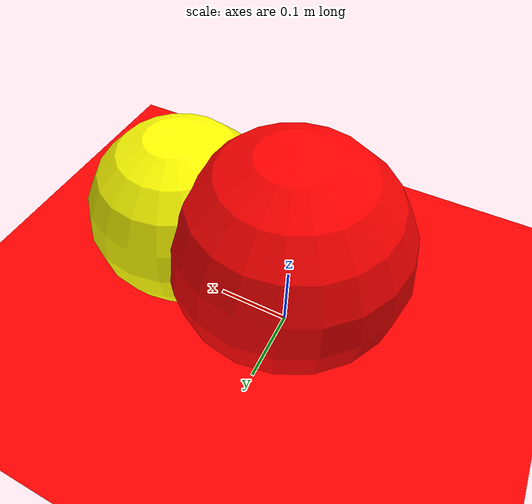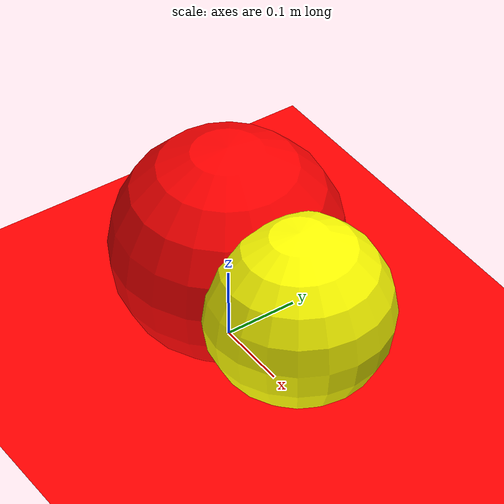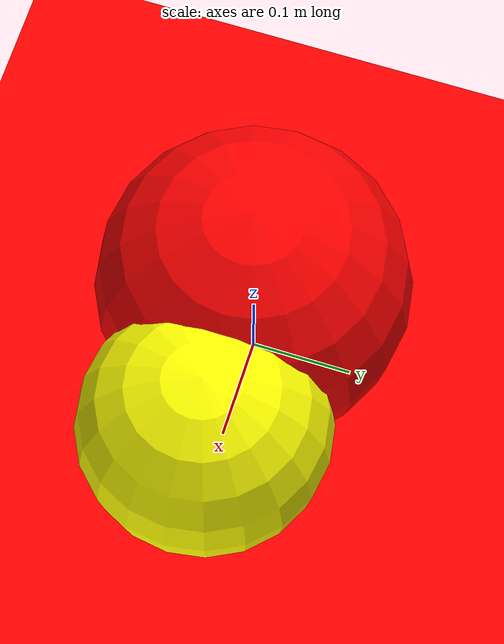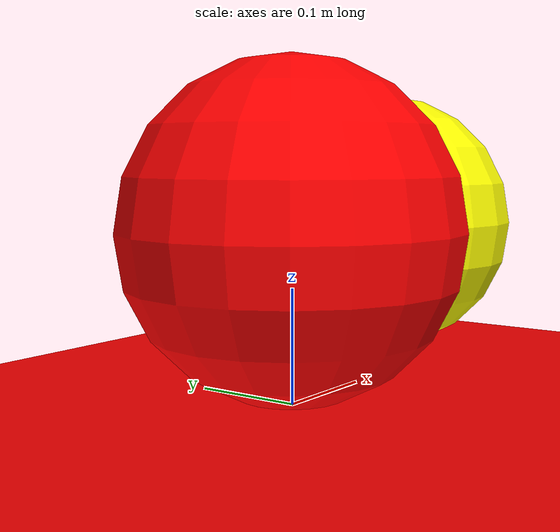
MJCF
<mujoco>
    <size njmax="3000" nconmax="1000"/>
    <option timestep="0.002"/>
    <default>
        <geom condim="6" density="1" rgba="1 0 0 1"/>
        <joint damping=".001"/>
        <motor ctrlrange="-1 1" ctrllimited="true" forcerange="-.05 .05" forcelimited="true"/>
        <velocity ctrlrange="-1 1" ctrllimited="true" forcerange="-.05 .05" forcelimited="true"/>
        <site size="0.032" type="sphere"/>
    </default>
    <worldbody>
        <geom name="floor" size="5 5 0.1" type="plane" condim="6"/>
        <body name="robot" pos="0 0 .15">
            <camera name="vision" pos="0 0 .15" xyaxes="0 -1 0 .4 0 1" fovy="90"/>
            <joint type="slide" axis="1 0 0" name="x" damping="0.01"/>
            <joint type="slide" axis="0 1 0" name="y" damping="0.01"/>
            <joint type="hinge" axis="0 0 1" name="z" damping="0.005"/>
            <geom name="robot" type="sphere" size=".15" friction="1 0.01 0.01"/>
            <geom name="pointarrow" pos="0.15 0 0" size="0.12" type="sphere" rgba="1 1 0 1"/>
            <site name="robot" rgba="1 0 0 .1"/>
        </body>
    </worldbody>
    <sensor>
        <!-- Used for observation -->
        <accelerometer site="robot" name="accelerometer"/>
        <velocimeter site="robot" name="velocimeter"/>
        <gyro site="robot" name="gyro"/>
        <magnetometer site="robot" name="magnetometer"/>

        <!-- Used for intrinsic constraints -->
        <subtreecom body="robot" name="subtreecom"/>
        <subtreelinvel body="robot" name="subtreelinvel"/>
        <subtreeangmom body="robot" name="subtreeangmom"/>
    </sensor>
    <actuator>
        <motor gear="0.3 0 0 0 0 0" site="robot" name="x"/>
        <velocity gear="0.3" jointinparent="z" name="z"/>
    </actuator>
</mujoco>
